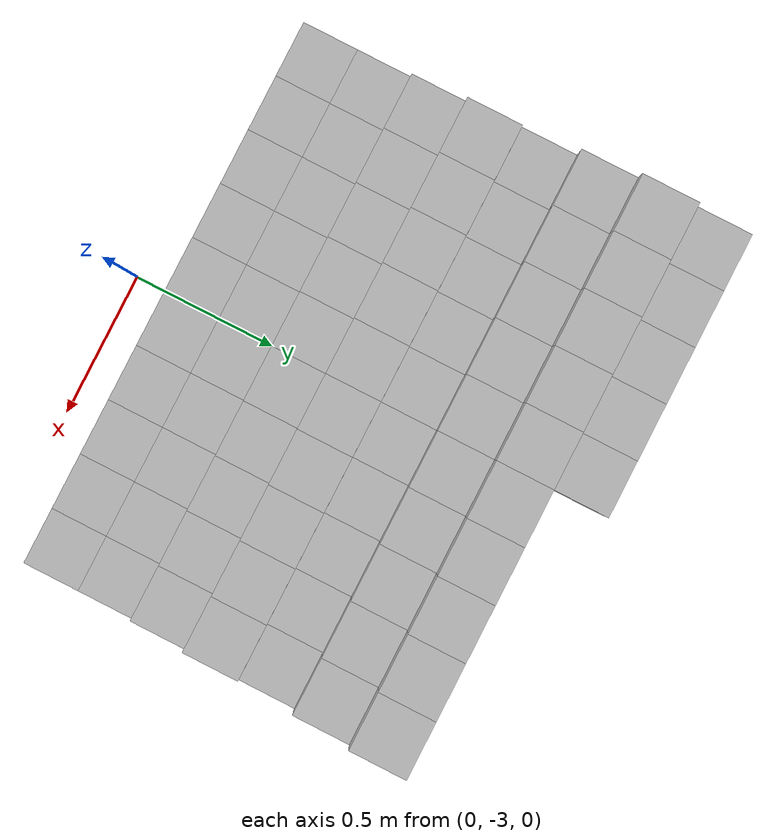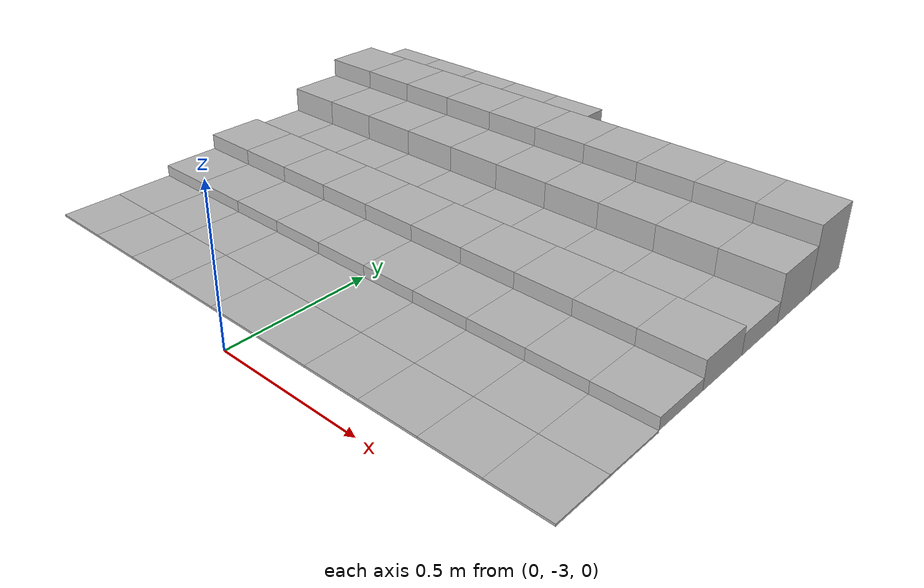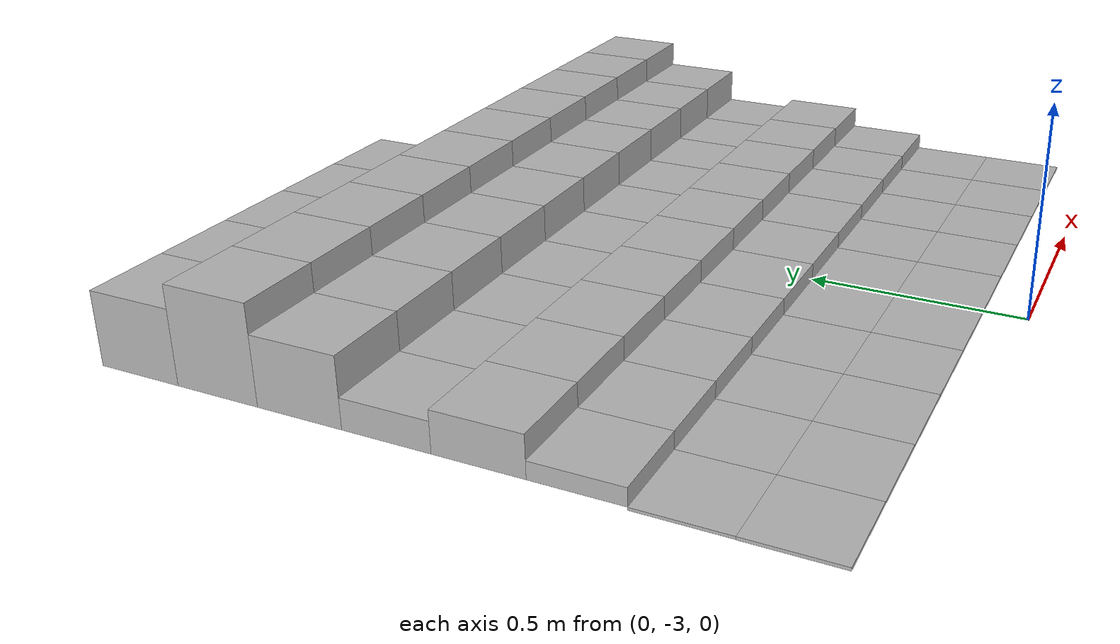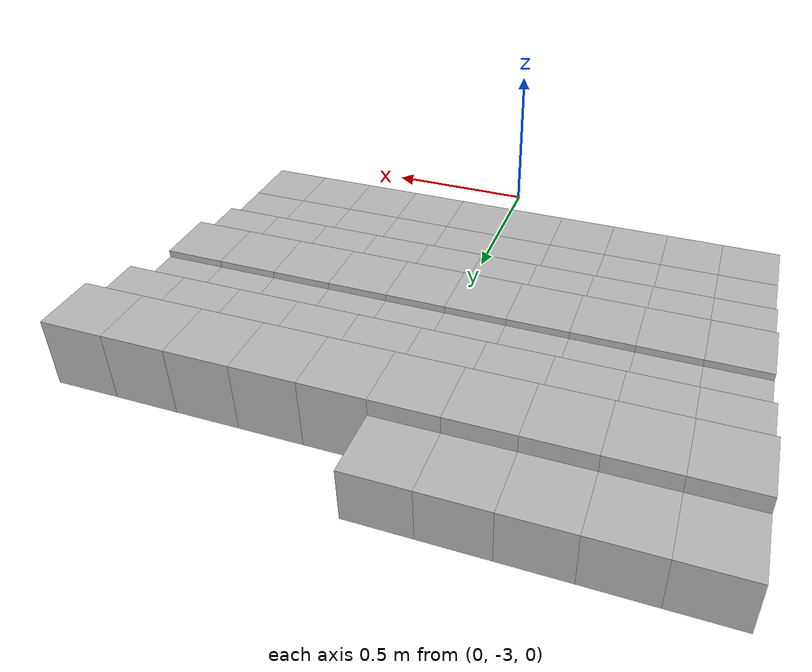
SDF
<sdf version="1.6">
 <model name="Terrain">
  <static>true</static>
  <link name="box_7_0">
   <pose>-0.9 -1.4 0.085885877857 0 0 0</pose>
   <inertial>
    <mass>1.0</mass>
    <inertia><ixx>0.0</ixx><ixy>0.0</ixy><ixz>0.0</ixz><iyy>0.0</iyy><iyz>0.0</iyz><izz>0.0</izz></inertia>
   </inertial>
   <collision name="collision"><geometry><box><size>0.2 0.2 0.171771755714</size></box></geometry></collision>
   <visual name="visual"><geometry><box><size>0.2 0.2 0.171771755714</size></box></geometry></visual>
  </link>
  <link name="box_7_1">
   <pose>-0.7 -1.4 0.085885877857 0 0 0</pose>
   <inertial>
    <mass>1.0</mass>
    <inertia><ixx>0.0</ixx><ixy>0.0</ixy><ixz>0.0</ixz><iyy>0.0</iyy><iyz>0.0</iyz><izz>0.0</izz></inertia>
   </inertial>
   <collision name="collision"><geometry><box><size>0.2 0.2 0.171771755714</size></box></geometry></collision>
   <visual name="visual"><geometry><box><size>0.2 0.2 0.171771755714</size></box></geometry></visual>
  </link>
  <link name="box_7_2">
   <pose>-0.5 -1.4 0.085885877857 0 0 0</pose>
   <inertial>
    <mass>1.0</mass>
    <inertia><ixx>0.0</ixx><ixy>0.0</ixy><ixz>0.0</ixz><iyy>0.0</iyy><iyz>0.0</iyz><izz>0.0</izz></inertia>
   </inertial>
   <collision name="collision"><geometry><box><size>0.2 0.2 0.171771755714</size></box></geometry></collision>
   <visual name="visual"><geometry><box><size>0.2 0.2 0.171771755714</size></box></geometry></visual>
  </link>
  <link name="box_7_3">
   <pose>-0.3 -1.4 0.085885877857 0 0 0</pose>
   <inertial>
    <mass>1.0</mass>
    <inertia><ixx>0.0</ixx><ixy>0.0</ixy><ixz>0.0</ixz><iyy>0.0</iyy><iyz>0.0</iyz><izz>0.0</izz></inertia>
   </inertial>
   <collision name="collision"><geometry><box><size>0.2 0.2 0.171771755714</size></box></geometry></collision>
   <visual name="visual"><geometry><box><size>0.2 0.2 0.171771755714</size></box></geometry></visual>
  </link>
  <link name="box_7_4">
   <pose>-0.1 -1.4 0.085885877857 0 0 0</pose>
   <inertial>
    <mass>1.0</mass>
    <inertia><ixx>0.0</ixx><ixy>0.0</ixy><ixz>0.0</ixz><iyy>0.0</iyy><iyz>0.0</iyz><izz>0.0</izz></inertia>
   </inertial>
   <collision name="collision"><geometry><box><size>0.2 0.2 0.171771755714</size></box></geometry></collision>
   <visual name="visual"><geometry><box><size>0.2 0.2 0.171771755714</size></box></geometry></visual>
  </link>
  <link name="box_8_0">
   <pose>-0.9 -1.6 0.112975514322 0 0 0</pose>
   <inertial>
    <mass>1.0</mass>
    <inertia><ixx>0.0</ixx><ixy>0.0</ixy><ixz>0.0</ixz><iyy>0.0</iyy><iyz>0.0</iyz><izz>0.0</izz></inertia>
   </inertial>
   <collision name="collision"><geometry><box><size>0.2 0.2 0.225951028644</size></box></geometry></collision>
   <visual name="visual"><geometry><box><size>0.2 0.2 0.225951028644</size></box></geometry></visual>
  </link>
  <link name="box_8_1">
   <pose>-0.7 -1.6 0.112975514322 0 0 0</pose>
   <inertial>
    <mass>1.0</mass>
    <inertia><ixx>0.0</ixx><ixy>0.0</ixy><ixz>0.0</ixz><iyy>0.0</iyy><iyz>0.0</iyz><izz>0.0</izz></inertia>
   </inertial>
   <collision name="collision"><geometry><box><size>0.2 0.2 0.225951028644</size></box></geometry></collision>
   <visual name="visual"><geometry><box><size>0.2 0.2 0.225951028644</size></box></geometry></visual>
  </link>
  <link name="box_8_2">
   <pose>-0.5 -1.6 0.112975514322 0 0 0</pose>
   <inertial>
    <mass>1.0</mass>
    <inertia><ixx>0.0</ixx><ixy>0.0</ixy><ixz>0.0</ixz><iyy>0.0</iyy><iyz>0.0</iyz><izz>0.0</izz></inertia>
   </inertial>
   <collision name="collision"><geometry><box><size>0.2 0.2 0.225951028644</size></box></geometry></collision>
   <visual name="visual"><geometry><box><size>0.2 0.2 0.225951028644</size></box></geometry></visual>
  </link>
  <link name="box_8_3">
   <pose>-0.3 -1.6 0.112975514322 0 0 0</pose>
   <inertial>
    <mass>1.0</mass>
    <inertia><ixx>0.0</ixx><ixy>0.0</ixy><ixz>0.0</ixz><iyy>0.0</iyy><iyz>0.0</iyz><izz>0.0</izz></inertia>
   </inertial>
   <collision name="collision"><geometry><box><size>0.2 0.2 0.225951028644</size></box></geometry></collision>
   <visual name="visual"><geometry><box><size>0.2 0.2 0.225951028644</size></box></geometry></visual>
  </link>
  <link name="box_8_4">
   <pose>-0.1 -1.6 0.112975514322 0 0 0</pose>
   <inertial>
    <mass>1.0</mass>
    <inertia><ixx>0.0</ixx><ixy>0.0</ixy><ixz>0.0</ixz><iyy>0.0</iyy><iyz>0.0</iyz><izz>0.0</izz></inertia>
   </inertial>
   <collision name="collision"><geometry><box><size>0.2 0.2 0.225951028644</size></box></geometry></collision>
   <visual name="visual"><geometry><box><size>0.2 0.2 0.225951028644</size></box></geometry></visual>
  </link>
  <link name="box_8_5">
   <pose>0.1 -1.6 0.112975514322 0 0 0</pose>
   <inertial>
    <mass>1.0</mass>
    <inertia><ixx>0.0</ixx><ixy>0.0</ixy><ixz>0.0</ixz><iyy>0.0</iyy><iyz>0.0</iyz><izz>0.0</izz></inertia>
   </inertial>
   <collision name="collision"><geometry><box><size>0.2 0.2 0.225951028644</size></box></geometry></collision>
   <visual name="visual"><geometry><box><size>0.2 0.2 0.225951028644</size></box></geometry></visual>
  </link>
  <link name="box_8_6">
   <pose>0.3 -1.6 0.112975514322 0 0 0</pose>
   <inertial>
    <mass>1.0</mass>
    <inertia><ixx>0.0</ixx><ixy>0.0</ixy><ixz>0.0</ixz><iyy>0.0</iyy><iyz>0.0</iyz><izz>0.0</izz></inertia>
   </inertial>
   <collision name="collision"><geometry><box><size>0.2 0.2 0.225951028644</size></box></geometry></collision>
   <visual name="visual"><geometry><box><size>0.2 0.2 0.225951028644</size></box></geometry></visual>
  </link>
  <link name="box_8_7">
   <pose>0.5 -1.6 0.112975514322 0 0 0</pose>
   <inertial>
    <mass>1.0</mass>
    <inertia><ixx>0.0</ixx><ixy>0.0</ixy><ixz>0.0</ixz><iyy>0.0</iyy><iyz>0.0</iyz><izz>0.0</izz></inertia>
   </inertial>
   <collision name="collision"><geometry><box><size>0.2 0.2 0.225951028644</size></box></geometry></collision>
   <visual name="visual"><geometry><box><size>0.2 0.2 0.225951028644</size></box></geometry></visual>
  </link>
  <link name="box_8_8">
   <pose>0.7 -1.6 0.112975514322 0 0 0</pose>
   <inertial>
    <mass>1.0</mass>
    <inertia><ixx>0.0</ixx><ixy>0.0</ixy><ixz>0.0</ixz><iyy>0.0</iyy><iyz>0.0</iyz><izz>0.0</izz></inertia>
   </inertial>
   <collision name="collision"><geometry><box><size>0.2 0.2 0.225951028644</size></box></geometry></collision>
   <visual name="visual"><geometry><box><size>0.2 0.2 0.225951028644</size></box></geometry></visual>
  </link>
  <link name="box_8_9">
   <pose>0.9 -1.6 0.112975514322 0 0 0</pose>
   <inertial>
    <mass>1.0</mass>
    <inertia><ixx>0.0</ixx><ixy>0.0</ixy><ixz>0.0</ixz><iyy>0.0</iyy><iyz>0.0</iyz><izz>0.0</izz></inertia>
   </inertial>
   <collision name="collision"><geometry><box><size>0.2 0.2 0.225951028644</size></box></geometry></collision>
   <visual name="visual"><geometry><box><size>0.2 0.2 0.225951028644</size></box></geometry></visual>
  </link>
  <link name="box_9_0">
   <pose>-0.9 -1.8 0.0794913048228 0 0 0</pose>
   <inertial>
    <mass>1.0</mass>
    <inertia><ixx>0.0</ixx><ixy>0.0</ixy><ixz>0.0</ixz><iyy>0.0</iyy><iyz>0.0</iyz><izz>0.0</izz></inertia>
   </inertial>
   <collision name="collision"><geometry><box><size>0.2 0.2 0.158982609646</size></box></geometry></collision>
   <visual name="visual"><geometry><box><size>0.2 0.2 0.158982609646</size></box></geometry></visual>
  </link>
  <link name="box_9_1">
   <pose>-0.7 -1.8 0.0794913048228 0 0 0</pose>
   <inertial>
    <mass>1.0</mass>
    <inertia><ixx>0.0</ixx><ixy>0.0</ixy><ixz>0.0</ixz><iyy>0.0</iyy><iyz>0.0</iyz><izz>0.0</izz></inertia>
   </inertial>
   <collision name="collision"><geometry><box><size>0.2 0.2 0.158982609646</size></box></geometry></collision>
   <visual name="visual"><geometry><box><size>0.2 0.2 0.158982609646</size></box></geometry></visual>
  </link>
  <link name="box_9_2">
   <pose>-0.5 -1.8 0.0794913048228 0 0 0</pose>
   <inertial>
    <mass>1.0</mass>
    <inertia><ixx>0.0</ixx><ixy>0.0</ixy><ixz>0.0</ixz><iyy>0.0</iyy><iyz>0.0</iyz><izz>0.0</izz></inertia>
   </inertial>
   <collision name="collision"><geometry><box><size>0.2 0.2 0.158982609646</size></box></geometry></collision>
   <visual name="visual"><geometry><box><size>0.2 0.2 0.158982609646</size></box></geometry></visual>
  </link>
  <link name="box_9_3">
   <pose>-0.3 -1.8 0.0794913048228 0 0 0</pose>
   <inertial>
    <mass>1.0</mass>
    <inertia><ixx>0.0</ixx><ixy>0.0</ixy><ixz>0.0</ixz><iyy>0.0</iyy><iyz>0.0</iyz><izz>0.0</izz></inertia>
   </inertial>
   <collision name="collision"><geometry><box><size>0.2 0.2 0.158982609646</size></box></geometry></collision>
   <visual name="visual"><geometry><box><size>0.2 0.2 0.158982609646</size></box></geometry></visual>
  </link>
  <link name="box_9_4">
   <pose>-0.1 -1.8 0.0794913048228 0 0 0</pose>
   <inertial>
    <mass>1.0</mass>
    <inertia><ixx>0.0</ixx><ixy>0.0</ixy><ixz>0.0</ixz><iyy>0.0</iyy><iyz>0.0</iyz><izz>0.0</izz></inertia>
   </inertial>
   <collision name="collision"><geometry><box><size>0.2 0.2 0.158982609646</size></box></geometry></collision>
   <visual name="visual"><geometry><box><size>0.2 0.2 0.158982609646</size></box></geometry></visual>
  </link>
  <link name="box_9_5">
   <pose>0.1 -1.8 0.0794913048228 0 0 0</pose>
   <inertial>
    <mass>1.0</mass>
    <inertia><ixx>0.0</ixx><ixy>0.0</ixy><ixz>0.0</ixz><iyy>0.0</iyy><iyz>0.0</iyz><izz>0.0</izz></inertia>
   </inertial>
   <collision name="collision"><geometry><box><size>0.2 0.2 0.158982609646</size></box></geometry></collision>
   <visual name="visual"><geometry><box><size>0.2 0.2 0.158982609646</size></box></geometry></visual>
  </link>
  <link name="box_9_6">
   <pose>0.3 -1.8 0.0794913048228 0 0 0</pose>
   <inertial>
    <mass>1.0</mass>
    <inertia><ixx>0.0</ixx><ixy>0.0</ixy><ixz>0.0</ixz><iyy>0.0</iyy><iyz>0.0</iyz><izz>0.0</izz></inertia>
   </inertial>
   <collision name="collision"><geometry><box><size>0.2 0.2 0.158982609646</size></box></geometry></collision>
   <visual name="visual"><geometry><box><size>0.2 0.2 0.158982609646</size></box></geometry></visual>
  </link>
  <link name="box_9_7">
   <pose>0.5 -1.8 0.0794913048228 0 0 0</pose>
   <inertial>
    <mass>1.0</mass>
    <inertia><ixx>0.0</ixx><ixy>0.0</ixy><ixz>0.0</ixz><iyy>0.0</iyy><iyz>0.0</iyz><izz>0.0</izz></inertia>
   </inertial>
   <collision name="collision"><geometry><box><size>0.2 0.2 0.158982609646</size></box></geometry></collision>
   <visual name="visual"><geometry><box><size>0.2 0.2 0.158982609646</size></box></geometry></visual>
  </link>
  <link name="box_9_8">
   <pose>0.7 -1.8 0.0794913048228 0 0 0</pose>
   <inertial>
    <mass>1.0</mass>
    <inertia><ixx>0.0</ixx><ixy>0.0</ixy><ixz>0.0</ixz><iyy>0.0</iyy><iyz>0.0</iyz><izz>0.0</izz></inertia>
   </inertial>
   <collision name="collision"><geometry><box><size>0.2 0.2 0.158982609646</size></box></geometry></collision>
   <visual name="visual"><geometry><box><size>0.2 0.2 0.158982609646</size></box></geometry></visual>
  </link>
  <link name="box_9_9">
   <pose>0.9 -1.8 0.0794913048228 0 0 0</pose>
   <inertial>
    <mass>1.0</mass>
    <inertia><ixx>0.0</ixx><ixy>0.0</ixy><ixz>0.0</ixz><iyy>0.0</iyy><iyz>0.0</iyz><izz>0.0</izz></inertia>
   </inertial>
   <collision name="collision"><geometry><box><size>0.2 0.2 0.158982609646</size></box></geometry></collision>
   <visual name="visual"><geometry><box><size>0.2 0.2 0.158982609646</size></box></geometry></visual>
  </link>
  <link name="box_10_0">
   <pose>-0.9 -2.0 0.0349418857531 0 0 0</pose>
   <inertial>
    <mass>1.0</mass>
    <inertia><ixx>0.0</ixx><ixy>0.0</ixy><ixz>0.0</ixz><iyy>0.0</iyy><iyz>0.0</iyz><izz>0.0</izz></inertia>
   </inertial>
   <collision name="collision"><geometry><box><size>0.2 0.2 0.0698837715062</size></box></geometry></collision>
   <visual name="visual"><geometry><box><size>0.2 0.2 0.0698837715062</size></box></geometry></visual>
  </link>
  <link name="box_10_1">
   <pose>-0.7 -2.0 0.0349418857531 0 0 0</pose>
   <inertial>
    <mass>1.0</mass>
    <inertia><ixx>0.0</ixx><ixy>0.0</ixy><ixz>0.0</ixz><iyy>0.0</iyy><iyz>0.0</iyz><izz>0.0</izz></inertia>
   </inertial>
   <collision name="collision"><geometry><box><size>0.2 0.2 0.0698837715062</size></box></geometry></collision>
   <visual name="visual"><geometry><box><size>0.2 0.2 0.0698837715062</size></box></geometry></visual>
  </link>
  <link name="box_10_2">
   <pose>-0.5 -2.0 0.0349418857531 0 0 0</pose>
   <inertial>
    <mass>1.0</mass>
    <inertia><ixx>0.0</ixx><ixy>0.0</ixy><ixz>0.0</ixz><iyy>0.0</iyy><iyz>0.0</iyz><izz>0.0</izz></inertia>
   </inertial>
   <collision name="collision"><geometry><box><size>0.2 0.2 0.0698837715062</size></box></geometry></collision>
   <visual name="visual"><geometry><box><size>0.2 0.2 0.0698837715062</size></box></geometry></visual>
  </link>
  <link name="box_10_3">
   <pose>-0.3 -2.0 0.0349418857531 0 0 0</pose>
   <inertial>
    <mass>1.0</mass>
    <inertia><ixx>0.0</ixx><ixy>0.0</ixy><ixz>0.0</ixz><iyy>0.0</iyy><iyz>0.0</iyz><izz>0.0</izz></inertia>
   </inertial>
   <collision name="collision"><geometry><box><size>0.2 0.2 0.0698837715062</size></box></geometry></collision>
   <visual name="visual"><geometry><box><size>0.2 0.2 0.0698837715062</size></box></geometry></visual>
  </link>
  <link name="box_10_4">
   <pose>-0.1 -2.0 0.0349418857531 0 0 0</pose>
   <inertial>
    <mass>1.0</mass>
    <inertia><ixx>0.0</ixx><ixy>0.0</ixy><ixz>0.0</ixz><iyy>0.0</iyy><iyz>0.0</iyz><izz>0.0</izz></inertia>
   </inertial>
   <collision name="collision"><geometry><box><size>0.2 0.2 0.0698837715062</size></box></geometry></collision>
   <visual name="visual"><geometry><box><size>0.2 0.2 0.0698837715062</size></box></geometry></visual>
  </link>
  <link name="box_10_5">
   <pose>0.1 -2.0 0.0349418857531 0 0 0</pose>
   <inertial>
    <mass>1.0</mass>
    <inertia><ixx>0.0</ixx><ixy>0.0</ixy><ixz>0.0</ixz><iyy>0.0</iyy><iyz>0.0</iyz><izz>0.0</izz></inertia>
   </inertial>
   <collision name="collision"><geometry><box><size>0.2 0.2 0.0698837715062</size></box></geometry></collision>
   <visual name="visual"><geometry><box><size>0.2 0.2 0.0698837715062</size></box></geometry></visual>
  </link>
  <link name="box_10_6">
   <pose>0.3 -2.0 0.0349418857531 0 0 0</pose>
   <inertial>
    <mass>1.0</mass>
    <inertia><ixx>0.0</ixx><ixy>0.0</ixy><ixz>0.0</ixz><iyy>0.0</iyy><iyz>0.0</iyz><izz>0.0</izz></inertia>
   </inertial>
   <collision name="collision"><geometry><box><size>0.2 0.2 0.0698837715062</size></box></geometry></collision>
   <visual name="visual"><geometry><box><size>0.2 0.2 0.0698837715062</size></box></geometry></visual>
  </link>
  <link name="box_10_7">
   <pose>0.5 -2.0 0.0349418857531 0 0 0</pose>
   <inertial>
    <mass>1.0</mass>
    <inertia><ixx>0.0</ixx><ixy>0.0</ixy><ixz>0.0</ixz><iyy>0.0</iyy><iyz>0.0</iyz><izz>0.0</izz></inertia>
   </inertial>
   <collision name="collision"><geometry><box><size>0.2 0.2 0.0698837715062</size></box></geometry></collision>
   <visual name="visual"><geometry><box><size>0.2 0.2 0.0698837715062</size></box></geometry></visual>
  </link>
  <link name="box_10_8">
   <pose>0.7 -2.0 0.0349418857531 0 0 0</pose>
   <inertial>
    <mass>1.0</mass>
    <inertia><ixx>0.0</ixx><ixy>0.0</ixy><ixz>0.0</ixz><iyy>0.0</iyy><iyz>0.0</iyz><izz>0.0</izz></inertia>
   </inertial>
   <collision name="collision"><geometry><box><size>0.2 0.2 0.0698837715062</size></box></geometry></collision>
   <visual name="visual"><geometry><box><size>0.2 0.2 0.0698837715062</size></box></geometry></visual>
  </link>
  <link name="box_10_9">
   <pose>0.9 -2.0 0.0349418857531 0 0 0</pose>
   <inertial>
    <mass>1.0</mass>
    <inertia><ixx>0.0</ixx><ixy>0.0</ixy><ixz>0.0</ixz><iyy>0.0</iyy><iyz>0.0</iyz><izz>0.0</izz></inertia>
   </inertial>
   <collision name="collision"><geometry><box><size>0.2 0.2 0.0698837715062</size></box></geometry></collision>
   <visual name="visual"><geometry><box><size>0.2 0.2 0.0698837715062</size></box></geometry></visual>
  </link>
  <link name="box_11_0">
   <pose>-0.9 -2.2 0.0470554424042 0 0 0</pose>
   <inertial>
    <mass>1.0</mass>
    <inertia><ixx>0.0</ixx><ixy>0.0</ixy><ixz>0.0</ixz><iyy>0.0</iyy><iyz>0.0</iyz><izz>0.0</izz></inertia>
   </inertial>
   <collision name="collision"><geometry><box><size>0.2 0.2 0.0941108848084</size></box></geometry></collision>
   <visual name="visual"><geometry><box><size>0.2 0.2 0.0941108848084</size></box></geometry></visual>
  </link>
  <link name="box_11_1">
   <pose>-0.7 -2.2 0.0470554424042 0 0 0</pose>
   <inertial>
    <mass>1.0</mass>
    <inertia><ixx>0.0</ixx><ixy>0.0</ixy><ixz>0.0</ixz><iyy>0.0</iyy><iyz>0.0</iyz><izz>0.0</izz></inertia>
   </inertial>
   <collision name="collision"><geometry><box><size>0.2 0.2 0.0941108848084</size></box></geometry></collision>
   <visual name="visual"><geometry><box><size>0.2 0.2 0.0941108848084</size></box></geometry></visual>
  </link>
  <link name="box_11_2">
   <pose>-0.5 -2.2 0.0470554424042 0 0 0</pose>
   <inertial>
    <mass>1.0</mass>
    <inertia><ixx>0.0</ixx><ixy>0.0</ixy><ixz>0.0</ixz><iyy>0.0</iyy><iyz>0.0</iyz><izz>0.0</izz></inertia>
   </inertial>
   <collision name="collision"><geometry><box><size>0.2 0.2 0.0941108848084</size></box></geometry></collision>
   <visual name="visual"><geometry><box><size>0.2 0.2 0.0941108848084</size></box></geometry></visual>
  </link>
  <link name="box_11_3">
   <pose>-0.3 -2.2 0.0470554424042 0 0 0</pose>
   <inertial>
    <mass>1.0</mass>
    <inertia><ixx>0.0</ixx><ixy>0.0</ixy><ixz>0.0</ixz><iyy>0.0</iyy><iyz>0.0</iyz><izz>0.0</izz></inertia>
   </inertial>
   <collision name="collision"><geometry><box><size>0.2 0.2 0.0941108848084</size></box></geometry></collision>
   <visual name="visual"><geometry><box><size>0.2 0.2 0.0941108848084</size></box></geometry></visual>
  </link>
  <link name="box_11_4">
   <pose>-0.1 -2.2 0.0470554424042 0 0 0</pose>
   <inertial>
    <mass>1.0</mass>
    <inertia><ixx>0.0</ixx><ixy>0.0</ixy><ixz>0.0</ixz><iyy>0.0</iyy><iyz>0.0</iyz><izz>0.0</izz></inertia>
   </inertial>
   <collision name="collision"><geometry><box><size>0.2 0.2 0.0941108848084</size></box></geometry></collision>
   <visual name="visual"><geometry><box><size>0.2 0.2 0.0941108848084</size></box></geometry></visual>
  </link>
  <link name="box_11_5">
   <pose>0.1 -2.2 0.0470554424042 0 0 0</pose>
   <inertial>
    <mass>1.0</mass>
    <inertia><ixx>0.0</ixx><ixy>0.0</ixy><ixz>0.0</ixz><iyy>0.0</iyy><iyz>0.0</iyz><izz>0.0</izz></inertia>
   </inertial>
   <collision name="collision"><geometry><box><size>0.2 0.2 0.0941108848084</size></box></geometry></collision>
   <visual name="visual"><geometry><box><size>0.2 0.2 0.0941108848084</size></box></geometry></visual>
  </link>
  <link name="box_11_6">
   <pose>0.3 -2.2 0.0470554424042 0 0 0</pose>
   <inertial>
    <mass>1.0</mass>
    <inertia><ixx>0.0</ixx><ixy>0.0</ixy><ixz>0.0</ixz><iyy>0.0</iyy><iyz>0.0</iyz><izz>0.0</izz></inertia>
   </inertial>
   <collision name="collision"><geometry><box><size>0.2 0.2 0.0941108848084</size></box></geometry></collision>
   <visual name="visual"><geometry><box><size>0.2 0.2 0.0941108848084</size></box></geometry></visual>
  </link>
  <link name="box_11_7">
   <pose>0.5 -2.2 0.0470554424042 0 0 0</pose>
   <inertial>
    <mass>1.0</mass>
    <inertia><ixx>0.0</ixx><ixy>0.0</ixy><ixz>0.0</ixz><iyy>0.0</iyy><iyz>0.0</iyz><izz>0.0</izz></inertia>
   </inertial>
   <collision name="collision"><geometry><box><size>0.2 0.2 0.0941108848084</size></box></geometry></collision>
   <visual name="visual"><geometry><box><size>0.2 0.2 0.0941108848084</size></box></geometry></visual>
  </link>
  <link name="box_11_8">
   <pose>0.7 -2.2 0.0470554424042 0 0 0</pose>
   <inertial>
    <mass>1.0</mass>
    <inertia><ixx>0.0</ixx><ixy>0.0</ixy><ixz>0.0</ixz><iyy>0.0</iyy><iyz>0.0</iyz><izz>0.0</izz></inertia>
   </inertial>
   <collision name="collision"><geometry><box><size>0.2 0.2 0.0941108848084</size></box></geometry></collision>
   <visual name="visual"><geometry><box><size>0.2 0.2 0.0941108848084</size></box></geometry></visual>
  </link>
  <link name="box_11_9">
   <pose>0.9 -2.2 0.0470554424042 0 0 0</pose>
   <inertial>
    <mass>1.0</mass>
    <inertia><ixx>0.0</ixx><ixy>0.0</ixy><ixz>0.0</ixz><iyy>0.0</iyy><iyz>0.0</iyz><izz>0.0</izz></inertia>
   </inertial>
   <collision name="collision"><geometry><box><size>0.2 0.2 0.0941108848084</size></box></geometry></collision>
   <visual name="visual"><geometry><box><size>0.2 0.2 0.0941108848084</size></box></geometry></visual>
  </link>
  <link name="box_12_0">
   <pose>-0.9 -2.4 0.0198317606048 0 0 0</pose>
   <inertial>
    <mass>1.0</mass>
    <inertia><ixx>0.0</ixx><ixy>0.0</ixy><ixz>0.0</ixz><iyy>0.0</iyy><iyz>0.0</iyz><izz>0.0</izz></inertia>
   </inertial>
   <collision name="collision"><geometry><box><size>0.2 0.2 0.0396635212096</size></box></geometry></collision>
   <visual name="visual"><geometry><box><size>0.2 0.2 0.0396635212096</size></box></geometry></visual>
  </link>
  <link name="box_12_1">
   <pose>-0.7 -2.4 0.0198317606048 0 0 0</pose>
   <inertial>
    <mass>1.0</mass>
    <inertia><ixx>0.0</ixx><ixy>0.0</ixy><ixz>0.0</ixz><iyy>0.0</iyy><iyz>0.0</iyz><izz>0.0</izz></inertia>
   </inertial>
   <collision name="collision"><geometry><box><size>0.2 0.2 0.0396635212096</size></box></geometry></collision>
   <visual name="visual"><geometry><box><size>0.2 0.2 0.0396635212096</size></box></geometry></visual>
  </link>
  <link name="box_12_2">
   <pose>-0.5 -2.4 0.0198317606048 0 0 0</pose>
   <inertial>
    <mass>1.0</mass>
    <inertia><ixx>0.0</ixx><ixy>0.0</ixy><ixz>0.0</ixz><iyy>0.0</iyy><iyz>0.0</iyz><izz>0.0</izz></inertia>
   </inertial>
   <collision name="collision"><geometry><box><size>0.2 0.2 0.0396635212096</size></box></geometry></collision>
   <visual name="visual"><geometry><box><size>0.2 0.2 0.0396635212096</size></box></geometry></visual>
  </link>
  <link name="box_12_3">
   <pose>-0.3 -2.4 0.0198317606048 0 0 0</pose>
   <inertial>
    <mass>1.0</mass>
    <inertia><ixx>0.0</ixx><ixy>0.0</ixy><ixz>0.0</ixz><iyy>0.0</iyy><iyz>0.0</iyz><izz>0.0</izz></inertia>
   </inertial>
   <collision name="collision"><geometry><box><size>0.2 0.2 0.0396635212096</size></box></geometry></collision>
   <visual name="visual"><geometry><box><size>0.2 0.2 0.0396635212096</size></box></geometry></visual>
  </link>
  <link name="box_12_4">
   <pose>-0.1 -2.4 0.0198317606048 0 0 0</pose>
   <inertial>
    <mass>1.0</mass>
    <inertia><ixx>0.0</ixx><ixy>0.0</ixy><ixz>0.0</ixz><iyy>0.0</iyy><iyz>0.0</iyz><izz>0.0</izz></inertia>
   </inertial>
   <collision name="collision"><geometry><box><size>0.2 0.2 0.0396635212096</size></box></geometry></collision>
   <visual name="visual"><geometry><box><size>0.2 0.2 0.0396635212096</size></box></geometry></visual>
  </link>
  <link name="box_12_5">
   <pose>0.1 -2.4 0.0198317606048 0 0 0</pose>
   <inertial>
    <mass>1.0</mass>
    <inertia><ixx>0.0</ixx><ixy>0.0</ixy><ixz>0.0</ixz><iyy>0.0</iyy><iyz>0.0</iyz><izz>0.0</izz></inertia>
   </inertial>
   <collision name="collision"><geometry><box><size>0.2 0.2 0.0396635212096</size></box></geometry></collision>
   <visual name="visual"><geometry><box><size>0.2 0.2 0.0396635212096</size></box></geometry></visual>
  </link>
  <link name="box_12_6">
   <pose>0.3 -2.4 0.0198317606048 0 0 0</pose>
   <inertial>
    <mass>1.0</mass>
    <inertia><ixx>0.0</ixx><ixy>0.0</ixy><ixz>0.0</ixz><iyy>0.0</iyy><iyz>0.0</iyz><izz>0.0</izz></inertia>
   </inertial>
   <collision name="collision"><geometry><box><size>0.2 0.2 0.0396635212096</size></box></geometry></collision>
   <visual name="visual"><geometry><box><size>0.2 0.2 0.0396635212096</size></box></geometry></visual>
  </link>
  <link name="box_12_7">
   <pose>0.5 -2.4 0.0198317606048 0 0 0</pose>
   <inertial>
    <mass>1.0</mass>
    <inertia><ixx>0.0</ixx><ixy>0.0</ixy><ixz>0.0</ixz><iyy>0.0</iyy><iyz>0.0</iyz><izz>0.0</izz></inertia>
   </inertial>
   <collision name="collision"><geometry><box><size>0.2 0.2 0.0396635212096</size></box></geometry></collision>
   <visual name="visual"><geometry><box><size>0.2 0.2 0.0396635212096</size></box></geometry></visual>
  </link>
  <link name="box_12_8">
   <pose>0.7 -2.4 0.0198317606048 0 0 0</pose>
   <inertial>
    <mass>1.0</mass>
    <inertia><ixx>0.0</ixx><ixy>0.0</ixy><ixz>0.0</ixz><iyy>0.0</iyy><iyz>0.0</iyz><izz>0.0</izz></inertia>
   </inertial>
   <collision name="collision"><geometry><box><size>0.2 0.2 0.0396635212096</size></box></geometry></collision>
   <visual name="visual"><geometry><box><size>0.2 0.2 0.0396635212096</size></box></geometry></visual>
  </link>
  <link name="box_12_9">
   <pose>0.9 -2.4 0.0198317606048 0 0 0</pose>
   <inertial>
    <mass>1.0</mass>
    <inertia><ixx>0.0</ixx><ixy>0.0</ixy><ixz>0.0</ixz><iyy>0.0</iyy><iyz>0.0</iyz><izz>0.0</izz></inertia>
   </inertial>
   <collision name="collision"><geometry><box><size>0.2 0.2 0.0396635212096</size></box></geometry></collision>
   <visual name="visual"><geometry><box><size>0.2 0.2 0.0396635212096</size></box></geometry></visual>
  </link>
  <link name="box_13_0">
   <pose>-0.9 -2.6 -0.00319806583813 0 0 0</pose>
   <inertial>
    <mass>1.0</mass>
    <inertia><ixx>0.0</ixx><ixy>0.0</ixy><ixz>0.0</ixz><iyy>0.0</iyy><iyz>0.0</iyz><izz>0.0</izz></inertia>
   </inertial>
   <collision name="collision"><geometry><box><size>0.2 0.2 -0.00639613167626</size></box></geometry></collision>
   <visual name="visual"><geometry><box><size>0.2 0.2 -0.00639613167626</size></box></geometry></visual>
  </link>
  <link name="box_13_1">
   <pose>-0.7 -2.6 -0.00319806583813 0 0 0</pose>
   <inertial>
    <mass>1.0</mass>
    <inertia><ixx>0.0</ixx><ixy>0.0</ixy><ixz>0.0</ixz><iyy>0.0</iyy><iyz>0.0</iyz><izz>0.0</izz></inertia>
   </inertial>
   <collision name="collision"><geometry><box><size>0.2 0.2 -0.00639613167626</size></box></geometry></collision>
   <visual name="visual"><geometry><box><size>0.2 0.2 -0.00639613167626</size></box></geometry></visual>
  </link>
  <link name="box_13_2">
   <pose>-0.5 -2.6 -0.00319806583813 0 0 0</pose>
   <inertial>
    <mass>1.0</mass>
    <inertia><ixx>0.0</ixx><ixy>0.0</ixy><ixz>0.0</ixz><iyy>0.0</iyy><iyz>0.0</iyz><izz>0.0</izz></inertia>
   </inertial>
   <collision name="collision"><geometry><box><size>0.2 0.2 -0.00639613167626</size></box></geometry></collision>
   <visual name="visual"><geometry><box><size>0.2 0.2 -0.00639613167626</size></box></geometry></visual>
  </link>
  <link name="box_13_3">
   <pose>-0.3 -2.6 -0.00319806583813 0 0 0</pose>
   <inertial>
    <mass>1.0</mass>
    <inertia><ixx>0.0</ixx><ixy>0.0</ixy><ixz>0.0</ixz><iyy>0.0</iyy><iyz>0.0</iyz><izz>0.0</izz></inertia>
   </inertial>
   <collision name="collision"><geometry><box><size>0.2 0.2 -0.00639613167626</size></box></geometry></collision>
   <visual name="visual"><geometry><box><size>0.2 0.2 -0.00639613167626</size></box></geometry></visual>
  </link>
  <link name="box_13_4">
   <pose>-0.1 -2.6 -0.00319806583813 0 0 0</pose>
   <inertial>
    <mass>1.0</mass>
    <inertia><ixx>0.0</ixx><ixy>0.0</ixy><ixz>0.0</ixz><iyy>0.0</iyy><iyz>0.0</iyz><izz>0.0</izz></inertia>
   </inertial>
   <collision name="collision"><geometry><box><size>0.2 0.2 -0.00639613167626</size></box></geometry></collision>
   <visual name="visual"><geometry><box><size>0.2 0.2 -0.00639613167626</size></box></geometry></visual>
  </link>
  <link name="box_13_5">
   <pose>0.1 -2.6 -0.00319806583813 0 0 0</pose>
   <inertial>
    <mass>1.0</mass>
    <inertia><ixx>0.0</ixx><ixy>0.0</ixy><ixz>0.0</ixz><iyy>0.0</iyy><iyz>0.0</iyz><izz>0.0</izz></inertia>
   </inertial>
   <collision name="collision"><geometry><box><size>0.2 0.2 -0.00639613167626</size></box></geometry></collision>
   <visual name="visual"><geometry><box><size>0.2 0.2 -0.00639613167626</size></box></geometry></visual>
  </link>
  <link name="box_13_6">
   <pose>0.3 -2.6 -0.00319806583813 0 0 0</pose>
   <inertial>
    <mass>1.0</mass>
    <inertia><ixx>0.0</ixx><ixy>0.0</ixy><ixz>0.0</ixz><iyy>0.0</iyy><iyz>0.0</iyz><izz>0.0</izz></inertia>
   </inertial>
   <collision name="collision"><geometry><box><size>0.2 0.2 -0.00639613167626</size></box></geometry></collision>
   <visual name="visual"><geometry><box><size>0.2 0.2 -0.00639613167626</size></box></geometry></visual>
  </link>
  <link name="box_13_7">
   <pose>0.5 -2.6 -0.00319806583813 0 0 0</pose>
   <inertial>
    <mass>1.0</mass>
    <inertia><ixx>0.0</ixx><ixy>0.0</ixy><ixz>0.0</ixz><iyy>0.0</iyy><iyz>0.0</iyz><izz>0.0</izz></inertia>
   </inertial>
   <collision name="collision"><geometry><box><size>0.2 0.2 -0.00639613167626</size></box></geometry></collision>
   <visual name="visual"><geometry><box><size>0.2 0.2 -0.00639613167626</size></box></geometry></visual>
  </link>
  <link name="box_13_8">
   <pose>0.7 -2.6 -0.00319806583813 0 0 0</pose>
   <inertial>
    <mass>1.0</mass>
    <inertia><ixx>0.0</ixx><ixy>0.0</ixy><ixz>0.0</ixz><iyy>0.0</iyy><iyz>0.0</iyz><izz>0.0</izz></inertia>
   </inertial>
   <collision name="collision"><geometry><box><size>0.2 0.2 -0.00639613167626</size></box></geometry></collision>
   <visual name="visual"><geometry><box><size>0.2 0.2 -0.00639613167626</size></box></geometry></visual>
  </link>
  <link name="box_13_9">
   <pose>0.9 -2.6 -0.00319806583813 0 0 0</pose>
   <inertial>
    <mass>1.0</mass>
    <inertia><ixx>0.0</ixx><ixy>0.0</ixy><ixz>0.0</ixz><iyy>0.0</iyy><iyz>0.0</iyz><izz>0.0</izz></inertia>
   </inertial>
   <collision name="collision"><geometry><box><size>0.2 0.2 -0.00639613167626</size></box></geometry></collision>
   <visual name="visual"><geometry><box><size>0.2 0.2 -0.00639613167626</size></box></geometry></visual>
  </link>
  <link name="box_14_0">
   <pose>-0.9 -2.8 -0.00344471344576 0 0 0</pose>
   <inertial>
    <mass>1.0</mass>
    <inertia><ixx>0.0</ixx><ixy>0.0</ixy><ixz>0.0</ixz><iyy>0.0</iyy><iyz>0.0</iyz><izz>0.0</izz></inertia>
   </inertial>
   <collision name="collision"><geometry><box><size>0.2 0.2 -0.00688942689152</size></box></geometry></collision>
   <visual name="visual"><geometry><box><size>0.2 0.2 -0.00688942689152</size></box></geometry></visual>
  </link>
  <link name="box_14_1">
   <pose>-0.7 -2.8 -0.00344471344576 0 0 0</pose>
   <inertial>
    <mass>1.0</mass>
    <inertia><ixx>0.0</ixx><ixy>0.0</ixy><ixz>0.0</ixz><iyy>0.0</iyy><iyz>0.0</iyz><izz>0.0</izz></inertia>
   </inertial>
   <collision name="collision"><geometry><box><size>0.2 0.2 -0.00688942689152</size></box></geometry></collision>
   <visual name="visual"><geometry><box><size>0.2 0.2 -0.00688942689152</size></box></geometry></visual>
  </link>
  <link name="box_14_2">
   <pose>-0.5 -2.8 -0.00344471344576 0 0 0</pose>
   <inertial>
    <mass>1.0</mass>
    <inertia><ixx>0.0</ixx><ixy>0.0</ixy><ixz>0.0</ixz><iyy>0.0</iyy><iyz>0.0</iyz><izz>0.0</izz></inertia>
   </inertial>
   <collision name="collision"><geometry><box><size>0.2 0.2 -0.00688942689152</size></box></geometry></collision>
   <visual name="visual"><geometry><box><size>0.2 0.2 -0.00688942689152</size></box></geometry></visual>
  </link>
  <link name="box_14_3">
   <pose>-0.3 -2.8 -0.00344471344576 0 0 0</pose>
   <inertial>
    <mass>1.0</mass>
    <inertia><ixx>0.0</ixx><ixy>0.0</ixy><ixz>0.0</ixz><iyy>0.0</iyy><iyz>0.0</iyz><izz>0.0</izz></inertia>
   </inertial>
   <collision name="collision"><geometry><box><size>0.2 0.2 -0.00688942689152</size></box></geometry></collision>
   <visual name="visual"><geometry><box><size>0.2 0.2 -0.00688942689152</size></box></geometry></visual>
  </link>
  <link name="box_14_4">
   <pose>-0.1 -2.8 -0.00344471344576 0 0 0</pose>
   <inertial>
    <mass>1.0</mass>
    <inertia><ixx>0.0</ixx><ixy>0.0</ixy><ixz>0.0</ixz><iyy>0.0</iyy><iyz>0.0</iyz><izz>0.0</izz></inertia>
   </inertial>
   <collision name="collision"><geometry><box><size>0.2 0.2 -0.00688942689152</size></box></geometry></collision>
   <visual name="visual"><geometry><box><size>0.2 0.2 -0.00688942689152</size></box></geometry></visual>
  </link>
  <link name="box_14_5">
   <pose>0.1 -2.8 -0.00344471344576 0 0 0</pose>
   <inertial>
    <mass>1.0</mass>
    <inertia><ixx>0.0</ixx><ixy>0.0</ixy><ixz>0.0</ixz><iyy>0.0</iyy><iyz>0.0</iyz><izz>0.0</izz></inertia>
   </inertial>
   <collision name="collision"><geometry><box><size>0.2 0.2 -0.00688942689152</size></box></geometry></collision>
   <visual name="visual"><geometry><box><size>0.2 0.2 -0.00688942689152</size></box></geometry></visual>
  </link>
  <link name="box_14_6">
   <pose>0.3 -2.8 -0.00344471344576 0 0 0</pose>
   <inertial>
    <mass>1.0</mass>
    <inertia><ixx>0.0</ixx><ixy>0.0</ixy><ixz>0.0</ixz><iyy>0.0</iyy><iyz>0.0</iyz><izz>0.0</izz></inertia>
   </inertial>
   <collision name="collision"><geometry><box><size>0.2 0.2 -0.00688942689152</size></box></geometry></collision>
   <visual name="visual"><geometry><box><size>0.2 0.2 -0.00688942689152</size></box></geometry></visual>
  </link>
  <link name="box_14_7">
   <pose>0.5 -2.8 -0.00344471344576 0 0 0</pose>
   <inertial>
    <mass>1.0</mass>
    <inertia><ixx>0.0</ixx><ixy>0.0</ixy><ixz>0.0</ixz><iyy>0.0</iyy><iyz>0.0</iyz><izz>0.0</izz></inertia>
   </inertial>
   <collision name="collision"><geometry><box><size>0.2 0.2 -0.00688942689152</size></box></geometry></collision>
   <visual name="visual"><geometry><box><size>0.2 0.2 -0.00688942689152</size></box></geometry></visual>
  </link>
  <link name="box_14_8">
   <pose>0.7 -2.8 -0.00344471344576 0 0 0</pose>
   <inertial>
    <mass>1.0</mass>
    <inertia><ixx>0.0</ixx><ixy>0.0</ixy><ixz>0.0</ixz><iyy>0.0</iyy><iyz>0.0</iyz><izz>0.0</izz></inertia>
   </inertial>
   <collision name="collision"><geometry><box><size>0.2 0.2 -0.00688942689152</size></box></geometry></collision>
   <visual name="visual"><geometry><box><size>0.2 0.2 -0.00688942689152</size></box></geometry></visual>
  </link>
  <link name="box_14_9">
   <pose>0.9 -2.8 -0.00344471344576 0 0 0</pose>
   <inertial>
    <mass>1.0</mass>
    <inertia><ixx>0.0</ixx><ixy>0.0</ixy><ixz>0.0</ixz><iyy>0.0</iyy><iyz>0.0</iyz><izz>0.0</izz></inertia>
   </inertial>
   <collision name="collision"><geometry><box><size>0.2 0.2 -0.00688942689152</size></box></geometry></collision>
   <visual name="visual"><geometry><box><size>0.2 0.2 -0.00688942689152</size></box></geometry></visual>
  </link>
 </model>
</sdf>
